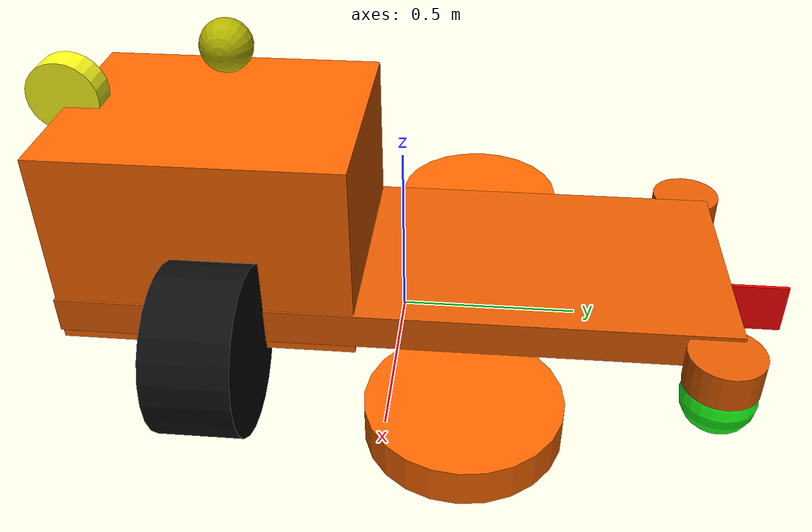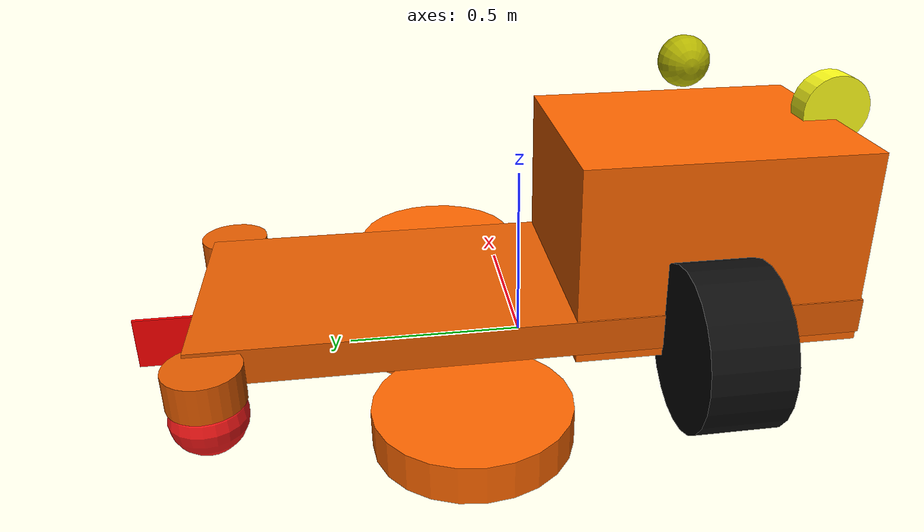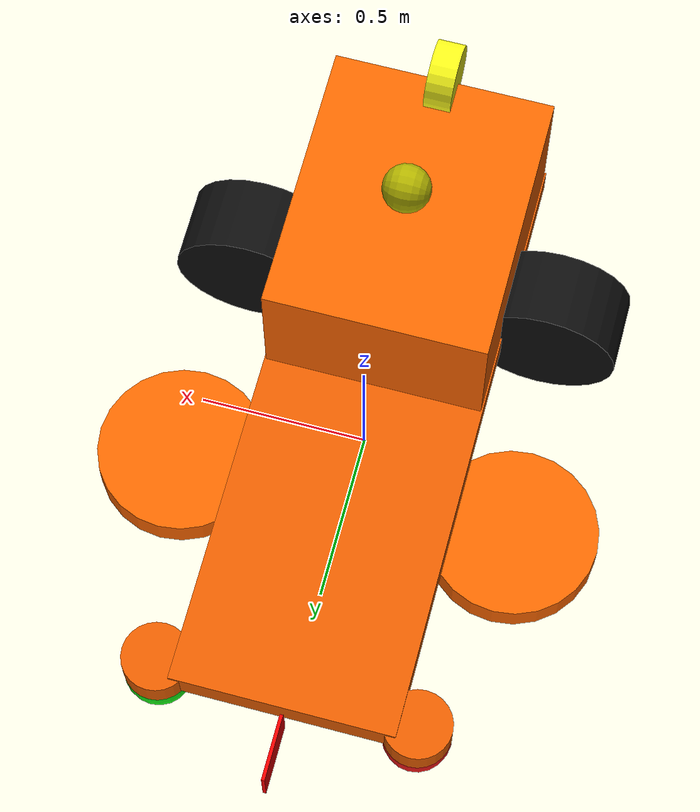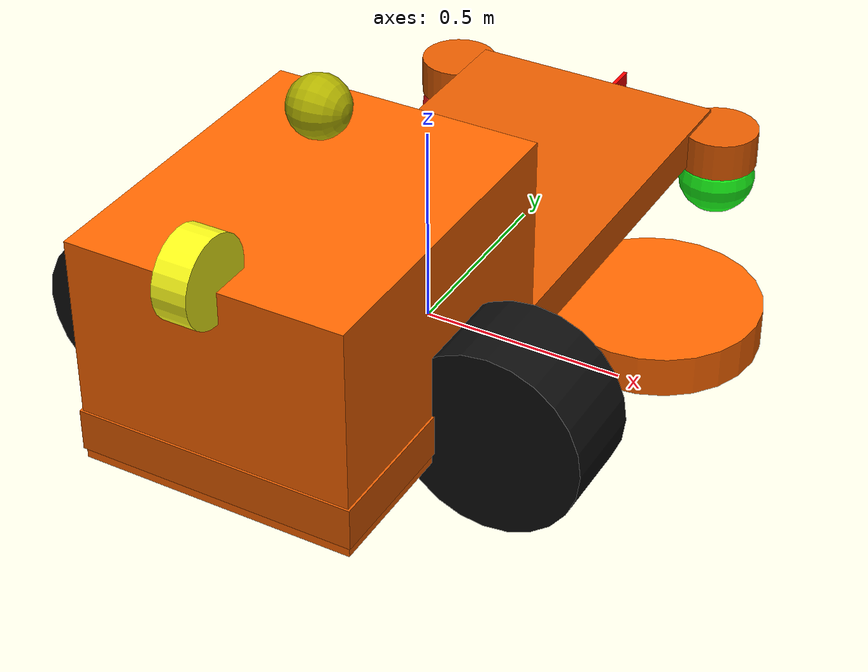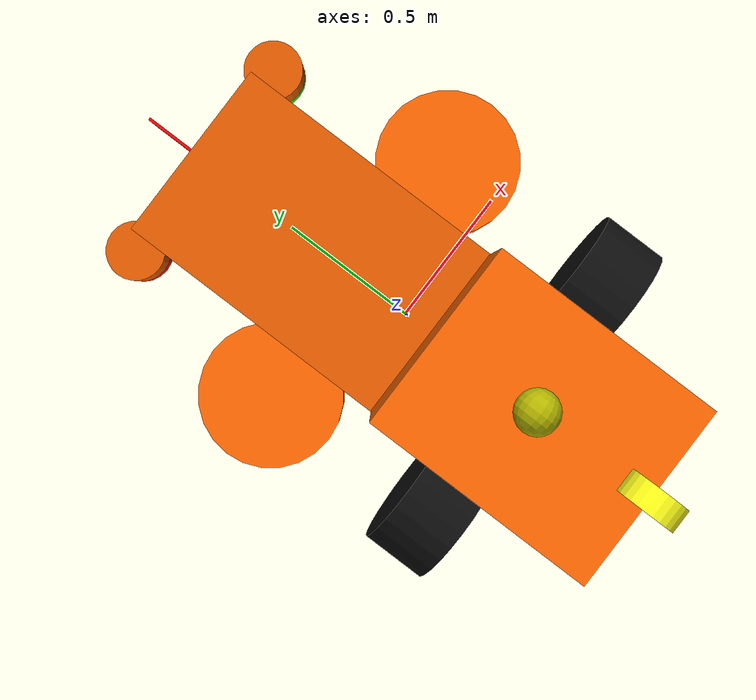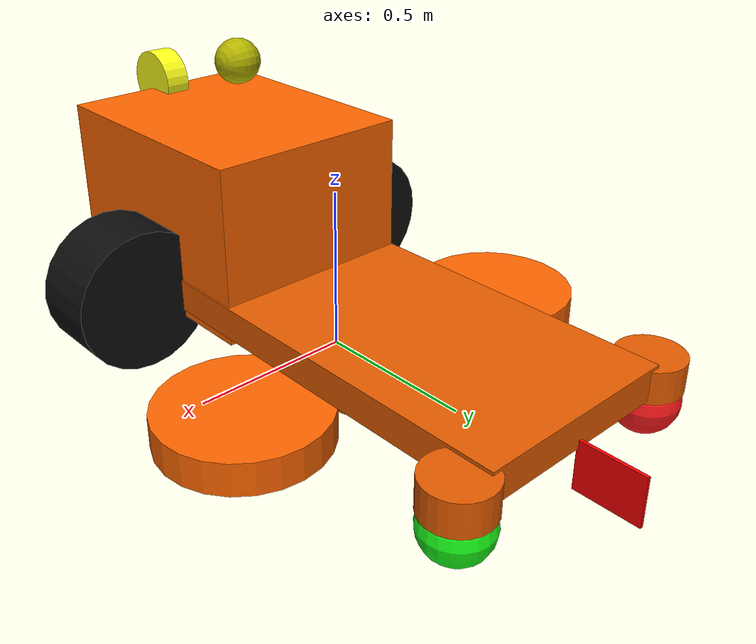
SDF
<sdf version="1.7">
 <world name="runway">
  <plugin filename="gz-sim-physics-system" name="gz::sim::systems::Physics"/>
  <plugin filename="gz-sim-user-commands-system" name="gz::sim::systems::UserCommands"/>
  <plugin filename="gz-sim-scene-broadcaster-system" name="gz::sim::systems::SceneBroadcaster"/>
  <plugin filename="gz-sim-imu-system" name="gz::sim::systems::Imu"/>
  <plugin filename="gz-sim-magnetometer-system" name="gz::sim::systems::Magnetometer"/>
  <plugin filename="gz-sim-navsat-system" name="gz::sim::systems::NavSat"/>
  <scene><ambient>1.0 1.0 1.0</ambient><background>0.8 0.8 0.8</background></scene>
  <light type="directional" name="sun">
   <pose>0 0 10 0 0 0</pose>
   <diffuse>0.8 0.8 0.8 1</diffuse>
   <specular>0.8 0.8 0.8 1</specular>
   <attenuation>
    <range>1000</range>
    <constant>0.9</constant>
    <linear>0.01</linear>
    <quadratic>0.001</quadratic>
   </attenuation>
   <direction>-0.5 0.1 -0.9</direction>
  </light>
  <include><pose degrees="true">0 0 0.15 0 0 90</pose><uri>model://lawnmower</uri></include>
 </world>
</sdf>

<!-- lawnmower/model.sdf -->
<sdf version="1.9">
  <model name="lawnmower">
    <pose>0 0 0.246 0 0 0</pose>
    <static>0</static>
    <self_collide>false</self_collide>

    <link name="base_link">
      <pose>0 0 0 0 0 0</pose>
      <inertial>
        <pose>0 0 0 0 0 0</pose>
        <mass>220.0</mass>
        <inertia>
          <ixx>40</ixx>
          <ixy>0.0</ixy>
          <iyy>150</iyy>
          <ixz>0.0</ixz>
          <iyz>0.0</iyz>
          <izz>150</izz>
        </inertia>
      </inertial>
      <collision name="base_collision">
        <pose>0 0 0.2 0 0 0</pose>
        <geometry>
          <box>
            <size>1.8 0.65 0.55</size>
          </box>
        </geometry>
        <surface>
          <contact>
            <ode />
          </contact>
          <friction>
            <ode />
          </friction>
        </surface>
      </collision>
      <visual name="base_visual_base">
        <pose>0 0 0 0 0 0</pose>
        <geometry>
          <box>
            <size>1.81 0.66 0.1</size>
          </box>
        </geometry>
        <material>
          <ambient>0.9 0.36 0 1</ambient>
          <diffuse>0.9 0.36 0 1</diffuse>
          <specular>0 0 0 0</specular>
          <emissive>0 0 0 1</emissive>
        </material>
      </visual>
      <visual name="base_visual">
        <pose>-0.5 0 0.2 0 0 0</pose>
        <geometry>
          <box>
            <size>0.8 0.65 0.55</size>
          </box>
        </geometry>
        <material>
          <ambient>1.0 0.4 0 1</ambient>
          <diffuse>1.0 0.4 0 1</diffuse>
          <specular>0 0 0 0</specular>
          <emissive>0.2 0.08 0 1</emissive>
        </material>
      </visual>
      <visual name="base_visual_cutter_r">
        <pose>0.2 -0.5 -0.1 0 0 0</pose>
        <geometry>
          <cylinder>
            <radius>0.25</radius>
            <length>0.1</length>
          </cylinder>
        </geometry>
        <material>
          <ambient>1.0 0.4 0 1</ambient>
          <diffuse>1.0 0.4 0 1</diffuse>
          <specular>0 0 0 0</specular>
          <emissive>0.2 0.08 0 1</emissive>
        </material>
      </visual>
      <visual name="base_visual_cutter_c">
        <pose>0.23 0 -0.1 0 0 0</pose>
        <geometry>
          <cylinder>
            <radius>0.25</radius>
            <length>0.1</length>
          </cylinder>
        </geometry>
        <material>
          <ambient>1.0 0.4 0 1</ambient>
          <diffuse>1.0 0.4 0 1</diffuse>
          <specular>0 0 0 0</specular>
          <emissive>0.2 0.08 0 1</emissive>
        </material>
      </visual>
      <visual name="base_visual_cutter_l">
        <pose>0.2 0.5 -0.1 0 0 0</pose>
        <geometry>
          <cylinder>
            <radius>0.25</radius>
            <length>0.1</length>
          </cylinder>
        </geometry>
        <material>
          <ambient>1.0 0.4 0 1</ambient>
          <diffuse>1.0 0.4 0 1</diffuse>
          <specular>0 0 0 0</specular>
          <emissive>0.2 0.08 0 1</emissive>
        </material>
      </visual>

      <collision name="left_caster_collision">
        <pose>0.85 0.38 -0.1 0 0 0</pose>
        <geometry>
          <sphere>
            <radius>.1</radius>
          </sphere>
        </geometry>
        <surface>
          <friction>
            <ode>
              <mu>0</mu>
              <mu2>0</mu2>
              <slip1>1.0</slip1>
              <slip2>1.0</slip2>
            </ode>
          </friction>
        </surface>
      </collision>
      <visual name="left_caster_visual_base">
        <pose>0.85 0.38 -0.01 0 0 0</pose>
        <geometry>
          <cylinder>
            <radius>0.1</radius>
            <length>0.1</length>
          </cylinder>
        </geometry>
        <material>
          <ambient>0.9 0.36 0 1</ambient>
          <diffuse>0.9 0.36 0 1</diffuse>
          <specular>0 0 0 0</specular>
          <emissive>0 0 0 1</emissive>
        </material>
      </visual>
      <visual name="left_caster_visual">
        <pose>0.85 0.38 -0.1 0 0 0</pose>
        <geometry>
          <sphere>
            <radius>.1</radius>
          </sphere>
        </geometry>
        <material>
          <ambient>1.0 0.2 0.2 1</ambient>
          <diffuse>1.0 0.1 0.1 1</diffuse>
          <specular>0 0 0 0</specular>
          <emissive>0 0 0 1</emissive>
        </material>
      </visual>
      <collision name="right_caster_collision">
        <pose>0.85 -0.38 -0.1 0 0 0</pose>
        <geometry>
          <sphere>
            <radius>.1</radius>
          </sphere>
        </geometry>
        <surface>
          <friction>
            <ode>
              <mu>0</mu>
              <mu2>0</mu2>
              <slip1>1.0</slip1>
              <slip2>1.0</slip2>
            </ode>
          </friction>
        </surface>
      </collision>
      <visual name="right_caster_visual_base">
        <pose>0.85 -0.38 -0.01 0 0 0</pose>
        <geometry>
          <cylinder>
            <radius>0.1</radius>
            <length>0.1</length>
          </cylinder>
        </geometry>
        <material>
          <ambient>0.9 0.36 0 1</ambient>
          <diffuse>0.9 0.36 0 1</diffuse>
          <specular>0 0 0 0</specular>
          <emissive>0 0 0 1</emissive>
        </material>
      </visual>
      <visual name="right_caster_visual">
        <pose>0.85 -0.38 -0.1 0 0 0</pose>
        <geometry>
          <sphere>
            <radius>.1</radius>
          </sphere>
        </geometry>
        <material>
          <ambient>0.2 1.0 0.2 1</ambient>
          <diffuse>0.1 1.0 0.1 1</diffuse>
          <specular>0 0 0 0</specular>
          <emissive>0 0 0 1</emissive>
        </material>
      </visual>

      <sensor name="air_pressure_sensor" type="air_pressure">
        <gz_frame_id>base_link</gz_frame_id>
        <always_on>1</always_on>
        <update_rate>50</update_rate>
        <air_pressure>
          <pressure>
            <noise type="gaussian">
              <mean>0</mean>
              <stddev>0.01</stddev>
            </noise>
          </pressure>
        </air_pressure>
      </sensor>
      <sensor name="magnetometer_sensor" type="magnetometer">
        <gz_frame_id>base_link</gz_frame_id>
        <always_on>1</always_on>
        <update_rate>100</update_rate>
      </sensor>
      <sensor name="navsat_sensor" type="navsat">
        <gz_frame_id>base_link</gz_frame_id>
        <always_on>1</always_on>
        <update_rate>30</update_rate>
      </sensor>
      <sensor name="imu_sensor" type="imu">
        <gz_frame_id>base_link</gz_frame_id>
        <always_on>1</always_on>
        <update_rate>250</update_rate>
      </sensor>
    </link>

    <link name="left_wheel_link">
      <pose>-0.45 0.45 0.0215 0 1.57079632679 1.57079632679</pose>
      <inertial>
        <mass>8.0</mass>
        <inertia>
          <ixx>0.5</ixx>
          <ixy>0.0</ixy>
          <iyy>0.5</iyy>
          <ixz>0.0</ixz>
          <iyz>0.0</iyz>
          <izz>1.0</izz>
        </inertia>
      </inertial>
      <collision name="left_wheel_link_collision">
        <geometry>
          <cylinder>
            <radius>0.22</radius>
            <length>0.22</length>
          </cylinder>
        </geometry>
        <max_contacts>1</max_contacts>
        <surface>
          <friction>
            <ode>
              <mu>0.4</mu>
              <mu2>0.6</mu2>
            </ode>
          </friction>
          <contact>
            <ode>
              <min_depth>0.005</min_depth>
              <kp>1e8</kp>
            </ode>
          </contact>
        </surface>
      </collision>
      <visual name="left_wheel_link_visual">
        <pose>0 0 0 1.57079632679 0 0</pose>
        <geometry>
          <cylinder>
            <radius>0.22</radius>
            <length>0.22</length>
          </cylinder>
        </geometry>
        <material>
          <ambient>0.02 0.02 0.02 1</ambient>
          <diffuse>0.05 0.05 0.05 1</diffuse>
          <specular>0 0 0 0</specular>
          <emissive>0 0 0 1</emissive>
        </material>
      </visual>
    </link>
    <joint name="left_wheel_joint" type="revolute">
      <child>left_wheel_link</child>
      <parent>base_link</parent>
      <axis>
        <xyz>0 0 1</xyz>
        <limit>
          <lower>-1e+16</lower>
          <upper>1e+16</upper>
        </limit>
      </axis>
    </joint>

    <link name="right_wheel_link">
      <pose>-0.45 -0.45 0.0215 0 1.57079632679 1.57079632679</pose>
      <inertial>
        <mass>8.0</mass>
        <inertia>
          <ixx>0.5</ixx>
          <ixy>0.0</ixy>
          <iyy>0.5</iyy>
          <ixz>0.0</ixz>
          <iyz>0.0</iyz>
          <izz>1.0</izz>
        </inertia>
      </inertial>
      <collision name="right_wheel_link_collision">
        <geometry>
          <cylinder>
            <radius>0.22</radius>
            <length>0.22</length>
          </cylinder>
        </geometry>
        <max_contacts>1</max_contacts>
        <surface>
          <friction>
            <ode>
              <mu>0.4</mu>
              <mu2>0.6</mu2>
            </ode>
          </friction>
          <contact>
            <ode>
              <min_depth>0.005</min_depth>
              <kp>1e8</kp>
            </ode>
          </contact>
        </surface>
      </collision>
      <visual name="right_wheel_link_visual">
        <pose>0 0 0 1.57079632679 0 0</pose>
        <geometry>
          <cylinder>
            <radius>0.22</radius>
            <length>0.22</length>
          </cylinder>
        </geometry>
        <material>
          <ambient>0.02 0.02 0.02 1</ambient>
          <diffuse>0.05 0.05 0.05 1</diffuse>
          <specular>0 0 0 0</specular>
          <emissive>0 0 0 1</emissive>
        </material>
      </visual>
    </link>
    <joint name="right_wheel_joint" type="revolute">
      <child>right_wheel_link</child>
      <parent>base_link</parent>
      <axis>
        <xyz>0 0 1</xyz>
        <limit>
          <lower>-1e+16</lower>
          <upper>1e+16</upper>
        </limit>
      </axis>
    </joint>

    <link name="engine_visual_link">
      <pose>-0.9 0 0.5 0 0 0</pose>
      <visual name="engine_visual_link_visual">
        <pose>0 0 0 1.57079632679 0 0</pose>
        <geometry>
          <cylinder>
            <radius>0.1</radius>
            <length>0.08</length>
          </cylinder>
        </geometry>
        <material>
          <ambient>0.3 0.3 0.2 1</ambient>
          <diffuse>1.0 1.0 0.1 1</diffuse>
          <specular>0 0 0 0</specular>
          <emissive>0 0 0 1</emissive>
        </material>
      </visual>
    </link>
    <joint name="engine_visual_joint" type="revolute">
      <child>engine_visual_link</child>
      <parent>base_link</parent>
      <axis>
        <xyz>1 0 0</xyz>
        <limit>
          <lower>-1e+16</lower>
          <upper>1e+16</upper>
        </limit>
      </axis>
    </joint>

    <link name="cutter_blades_link">
      <pose>0.2 0 -0.1 0 0 0</pose>
      <visual name="cutter_blades_marker_visual">
        <pose>0.8 0 0 0 0 0</pose>
        <geometry>
          <box>
            <size>.20 .01 .15</size>
          </box>
        </geometry>
        <material>
          <ambient>1.0 0 0 1</ambient>
          <diffuse>1.0 0 0 1</diffuse>
          <specular>0 0 0 0</specular>
          <emissive>0 0 0 1</emissive>
        </material>
      </visual>
    </link>
    <joint name="cutter_blades_joint" type="revolute">
      <child>cutter_blades_link</child>
      <parent>base_link</parent>
      <axis>
        <xyz>0 0 1</xyz>
        <limit>
          <lower>-1e+16</lower>
          <upper>1e+16</upper>
        </limit>
      </axis>
    </joint>

    <link name="alarm_visual_link">
      <pose>-0.45 0 0.65 0 0 0</pose>
      <visual name="alarm_visual_sphere_visual">
        <pose>0 0 0 1.57079632679 0 0</pose>
        <geometry>
          <sphere>
            <radius>0.07</radius>
          </sphere>
        </geometry>
        <material>
          <ambient>0.7 0.7 0.0 1</ambient>
          <diffuse>0.7 0.7 0.0 1</diffuse>
          <specular>0 0 0 0</specular>
          <emissive>0 0 0 1</emissive>
        </material>
      </visual>
    </link>
    <joint name="alarm_visual_joint" type="revolute">
      <child>alarm_visual_link</child>
      <parent>base_link</parent>
      <axis>
        <xyz>0 0 1</xyz>
        <limit>
          <lower>-1e+16</lower>
          <upper>1e+16</upper>
        </limit>
      </axis>
    </joint>

    <plugin filename="gz-sim-joint-state-publisher-system"
      name="gz::sim::systems::JointStatePublisher">
      <joint_name>left_wheel_joint</joint_name>
      <joint_name>right_wheel_joint</joint_name>
    </plugin>
    <plugin filename="gz-sim-apply-joint-force-system"
      name="gz::sim::systems::ApplyJointForce">
      <joint_name>left_wheel_joint</joint_name>
    </plugin>
    <plugin filename="gz-sim-apply-joint-force-system"
      name="gz::sim::systems::ApplyJointForce">
      <joint_name>right_wheel_joint</joint_name>
    </plugin>

    <plugin name="ArduPilotPlugin" filename="ArduPilotPlugin">
      <fdm_addr>127.0.0.1</fdm_addr>
      <fdm_port_in>9002</fdm_port_in>
      <connectionTimeoutMaxCount>5</connectionTimeoutMaxCount>
      <lock_step>1</lock_step>

      <modelXYZToAirplaneXForwardZDown degrees="true">0 0 0 180 0 0</modelXYZToAirplaneXForwardZDown>
      <gazeboXYZToNED degrees="true">0 0 0 180 0 90</gazeboXYZToNED>

      <imuName>imu_sensor</imuName>

      <control channel="0">
        <jointName>left_wheel_joint</jointName>
        <useForce>1</useForce>
        <multiplier>18.0</multiplier>
        <offset>-0.5</offset>
        <servo_min>1000</servo_min>
        <servo_max>2000</servo_max>
        <type>VELOCITY</type>
        <p_gain>0.2</p_gain>
        <i_gain>0.06</i_gain>
        <d_gain>0.0001</d_gain>
        <i_max>1</i_max>
        <i_min>-1</i_min>
        <cmd_max>-1.0</cmd_max>
        <cmd_min>0.0</cmd_min>
      </control>
      <control channel="2">
        <jointName>right_wheel_joint</jointName>
        <useForce>1</useForce>
        <multiplier>18.0</multiplier>
        <offset>-0.5</offset>
        <servo_min>1000</servo_min>
        <servo_max>2000</servo_max>
        <type>VELOCITY</type>
        <p_gain>0.2</p_gain>
        <i_gain>0.06</i_gain>
        <d_gain>0.0001</d_gain>
        <i_max>1</i_max>
        <i_min>-1</i_min>
        <cmd_max>-1.0</cmd_max>
        <cmd_min>0.0</cmd_min>
      </control>
      <control channel="5">
        <jointName>cutter_blades_joint</jointName>
        <useForce>1</useForce>
        <multiplier>120.0</multiplier>
        <offset>-0.5</offset>
        <servo_min>1000</servo_min>
        <servo_max>2000</servo_max>
        <type>VELOCITY</type>
        <p_gain>0.2</p_gain>
        <i_gain>0.06</i_gain>
        <d_gain>0.0001</d_gain>
        <i_max>1</i_max>
        <i_min>-1</i_min>
        <cmd_max>-1.0</cmd_max>
        <cmd_min>0.0</cmd_min>
      </control>
    </plugin>
  </model>
</sdf>
